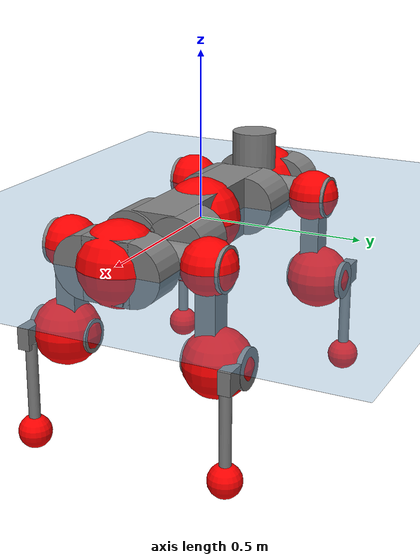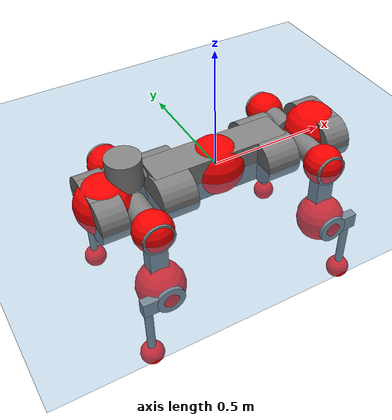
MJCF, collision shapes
<mujoco model="anymal_c">
  <compiler angle="radian" assetdir="assets" balanceinertia="true" inertiafromgeom="false"/>

  <option timestep="0.005" density="1.2" viscosity="2e-05"/>

  <size nkey="1"/>

  <visual>
    <quality shadowsize="8192"/>
    <map shadowclip="0.5"/>
  </visual>

  <default>
    <default class="/">
      <material specular="0" shininess="0.25"/>
      <geom contype="0" conaffinity="0" group="1" solref="-1000 -80"/>
      <site size="0.01 0.005 0.005" group="5"/>
      <general forcelimited="true" forcerange="-80 80" biastype="affine" gainprm="80" biasprm="0 -80 -2"/>
      <default class="anymal_c">
        <joint armature="0.01" damping="0.01" frictionloss="0.1"/>
        <default class="visual">
          <geom type="mesh" group="2"/>
          <default class="visual_zflip"/>
        </default>
        <default class="collision">
          <geom type="cylinder" group="3"/>
          <default class="foot">
            <geom size="0.03 0 0" type="sphere" condim="6" priority="1" friction="0.8 0.02 0.01" solimp="0.015 1 0.03"/>
          </default>
        </default>
      </default>
      <default class="reward_collision_sphere">
        <geom group="5" rgba="1 0 0 1"/>
      </default>
    </default>
  </default>

  <asset>
    <texture type="skybox" colorspace="auto" name="//unnamed_texture_0" builtin="gradient" rgb1="0.95 0.95 0.95" rgb2="0.95 0.95 0.95" width="100" height="600"/>
    <texture type="2d" colorspace="auto" name="texplane" builtin="checker" rgb1="0.345 0.575 0.748" rgb2="0.345 0.575 0.748" markrgb="1 1 1" width="512" height="512"/>
    <texture type="2d" colorspace="linear" name="base" file="base.png"/>
    <texture type="2d" colorspace="linear" name="top_shell" file="top_shell.png"/>
    <texture type="2d" colorspace="linear" name="bottom_shell" file="bottom_shell.png"/>
    <texture type="2d" colorspace="linear" name="remote" file="remote.png"/>
    <texture type="2d" colorspace="linear" name="hatch" file="hatch.png"/>
    <texture type="2d" colorspace="linear" name="handle" file="handle.png"/>
    <texture type="2d" colorspace="linear" name="face" file="face.png"/>
    <texture type="2d" colorspace="linear" name="battery" file="battery.png"/>
    <texture type="2d" colorspace="linear" name="lidar_cage" file="lidar_cage.png"/>
    <texture type="2d" colorspace="linear" name="depth_camera" file="depth_camera.png"/>
    <texture type="2d" colorspace="linear" name="wide_angle_camera" file="wide_angle_camera.png"/>
    <texture type="2d" colorspace="linear" name="lidar" file="lidar.png"/>
    <texture type="2d" colorspace="linear" name="drive" file="drive.png"/>
    <texture type="2d" colorspace="linear" name="hip_l" file="hip_l.png"/>
    <texture type="2d" colorspace="linear" name="shank_l" file="shank_l.png"/>
    <texture type="2d" colorspace="linear" name="foot" file="foot.png"/>
    <texture type="2d" colorspace="linear" name="thigh" file="thigh.png"/>
    <texture type="2d" colorspace="linear" name="shank_r" file="shank_r.png"/>
    <texture type="2d" colorspace="linear" name="hip_r" file="hip_r.png"/>
    <material name="MatPlane" class="/" texture="texplane" texuniform="true" texrepeat="2 2" specular="0.9" shininess="0.5"/>
    <material name="black_plastic" class="/" rgba="0.007 0.007 0.007 1"/>
    <material name="green" class="/" rgba="0.052 0.178 0.033 1"/>
    <material name="red" class="/" rgba="0.178 0.006 0.005 1"/>
    <material name="yellow" class="/" rgba="0.178 0.119 0.006 1"/>
    <material name="lwl" class="/" rgba="0.8 0.8 0.8 1"/>
    <material name="base" class="/" texture="base"/>
    <material name="top_shell" class="/" texture="top_shell"/>
    <material name="bottom_shell" class="/" texture="bottom_shell"/>
    <material name="hip_l" class="/" texture="hip_l"/>
    <material name="thigh" class="/" texture="thigh"/>
    <material name="shank_l" class="/" texture="shank_l"/>
    <material name="foot" class="/" texture="foot"/>
    <material name="hip_r" class="/" texture="hip_r"/>
    <material name="shank" class="/" texture="shank_r"/>
    <material name="hatch" class="/" texture="hatch"/>
    <material name="remote" class="/" texture="remote"/>
    <material name="handle" class="/" texture="handle"/>
    <material name="face" class="/" texture="face"/>
    <material name="depth_camera" class="/" texture="depth_camera"/>
    <material name="wide_angle_camera" class="/" texture="wide_angle_camera"/>
    <material name="battery" class="/" texture="battery"/>
    <material name="lidar_cage" class="/" texture="lidar_cage"/>
    <material name="lidar" class="/" texture="lidar"/>
    <material name="drive" class="/" texture="drive"/>
    <mesh name="base_0" class="/" file="base_0.obj"/>
    <mesh name="base_1" class="/" file="base_1.obj"/>
    <mesh name="base_2" class="/" file="base_2.obj"/>
    <mesh name="base_3" class="/" file="base_3.obj"/>
    <mesh name="base_4" class="/" file="base_4.obj"/>
    <mesh name="base_5" class="/" file="base_5.obj"/>
    <mesh name="top_shell" class="/" file="top_shell.obj"/>
    <mesh name="bottom_shell" class="/" file="bottom_shell.obj"/>
    <mesh name="remote" class="/" file="remote.obj"/>
    <mesh name="handle" class="/" file="handle.obj"/>
    <mesh name="face" class="/" file="face.obj"/>
    <mesh name="wide_angle_camera" class="/" file="wide_angle_camera.obj"/>
    <mesh name="depth_camera" class="/" file="depth_camera.obj"/>
    <mesh name="battery" class="/" file="battery.obj"/>
    <mesh name="lidar_cage" class="/" file="lidar_cage.obj"/>
    <mesh name="lidar" class="/" file="lidar.obj"/>
    <mesh name="drive" class="/" file="drive.obj"/>
    <mesh name="hip_l" class="/" file="hip_l.obj"/>
    <mesh name="thigh" class="/" file="thigh.obj"/>
    <mesh name="shank_l" class="/" file="shank_l.obj"/>
    <mesh name="foot" class="/" file="foot.obj"/>
    <mesh name="hip_r" class="/" file="hip_r.obj"/>
    <mesh name="hatch" class="/" file="hatch.obj"/>
    <mesh name="shank_r" class="/" file="shank_r.obj"/>
  </asset>

  <worldbody>
    <geom name="floor" class="/" size="100 100 0.125" type="plane" group="0" material="MatPlane"/>
    <light name="toplight_shadow" class="/" pos="0 0 5" dir="0.0990148 0.0990148 -0.990148" type="directional" ambient="0.04 0.04 0.04" diffuse="0.55 0.55 0.55" specular="0.12 0.12 0.12"/>
    <light name="toplight_fill" class="/" pos="0 0 5" dir="0.0990148 0.0990148 -0.990148" type="directional" castshadow="false" ambient="0.04 0.04 0.04" diffuse="0.3 0.3 0.3" specular="0.08 0.08 0.08"/>
    <body name="trunk" childclass="anymal_c" pos="-0.00258095 -0.00120185 0.000839475" quat="1 0.000606531 0.000194838 -0.000715918">
      <inertial pos="-0.000156184 -0.00020725 0.046524" quat="0.501749 0.502342 0.497308 0.498582" mass="18.9176" diaginertia="0.817888 0.666156 0.168151"/>
      <joint name="//unnamed_joint_0" type="free" armature="0" damping="0" frictionloss="0"/>
      <geom name="//unnamed_geom_1" class="visual" material="green" mesh="base_0"/>
      <geom name="//unnamed_geom_2" class="visual" material="yellow" mesh="base_1"/>
      <geom name="//unnamed_geom_3" class="visual" material="red" mesh="base_2"/>
      <geom name="//unnamed_geom_4" class="visual" material="black_plastic" mesh="base_3"/>
      <geom name="//unnamed_geom_5" class="visual" material="lwl" mesh="base_4"/>
      <geom name="//unnamed_geom_6" class="visual" material="base" mesh="base_5"/>
      <geom name="trunk_1" class="collision" size="0.290935 0.0702258 0.0902903" type="box"/>
      <geom name="trunk_2" class="collision" size="0.0902903 0.0727338" pos="0.228258 0.0709679 0" quat="0.707107 0 0.707107 0"/>
      <geom name="trunk_3" class="collision" size="0.0902903 0.0727338" pos="-0.228258 0.0709679 0" quat="0.707107 0 0.707107 0"/>
      <geom name="trunk_4" class="collision" size="0.0902903 0.0727338" pos="0.228258 -0.0709679 0" quat="0.707107 0 0.707107 0"/>
      <geom name="trunk_5" class="collision" size="0.0902903 0.0727338" pos="-0.228258 -0.0709679 0" quat="0.707107 0 0.707107 0"/>
      <geom name="//unnamed_geom_12" class="visual" material="top_shell" mesh="top_shell"/>
      <geom name="//unnamed_geom_13" class="visual" material="bottom_shell" mesh="bottom_shell"/>
      <geom name="//unnamed_geom_14" class="visual" material="remote" mesh="remote"/>
      <geom name="//unnamed_geom_15" class="visual" material="handle" mesh="handle"/>
      <geom name="//unnamed_geom_16" class="visual" pos="0.435001 0 0" quat="1 0 0 0" material="face" mesh="face"/>
      <geom name="trunk_6" class="collision" size="0.0551774 0.0702258 0.0902903" pos="0.492722 0 0" type="box"/>
      <geom name="//unnamed_geom_18" class="collision" size="0.0902903 0.0551774" pos="0.492722 0.0709679 0" quat="0.707107 0 0.707107 0"/>
      <geom name="//unnamed_geom_19" class="collision" size="0.0902903 0.0551774" pos="0.492722 -0.0709679 0" quat="0.707107 0 0.707107 0"/>
      <geom name="//unnamed_geom_20" class="visual" pos="0.484479 0 -0.0268511" quat="0.965926 0 0.258819 0" material="depth_camera" mesh="depth_camera"/>
      <geom name="//unnamed_geom_21" class="visual" pos="0.538373 0 0.0141674" material="wide_angle_camera" mesh="wide_angle_camera"/>
      <geom name="//unnamed_geom_22" class="visual_zflip" pos="-0.435001 0 0" quat="0 0 0 1" material="face" mesh="face"/>
      <geom name="trunk_7" class="collision" size="0.0551774 0.0702258 0.0902903" pos="-0.492722 0 0" quat="0 0 0 1" type="box"/>
      <geom name="//unnamed_geom_24" class="collision" size="0.0902903 0.0551774" pos="-0.492722 -0.0709679 0" quat="0 -0.707107 0 0.707107"/>
      <geom name="//unnamed_geom_25" class="collision" size="0.0902903 0.0551774" pos="-0.492722 0.0709679 0" quat="0 -0.707107 0 0.707107"/>
      <geom name="//unnamed_geom_26" class="visual" pos="-0.484479 0 -0.0268511" quat="0 -0.258819 0 0.965926" material="depth_camera" mesh="depth_camera"/>
      <geom name="//unnamed_geom_27" class="visual_zflip" pos="-0.538373 0 0.0141674" quat="0 0 0 1" material="wide_angle_camera" mesh="wide_angle_camera"/>
      <geom name="//unnamed_geom_28" class="visual" material="battery" mesh="battery"/>
      <geom name="//unnamed_geom_29" class="visual" pos="0 0.0770454 0.0282759" quat="0.683013 -0.183013 0.183013 0.683013" material="depth_camera" mesh="depth_camera"/>
      <geom name="//unnamed_geom_30" class="visual" pos="0 -0.0770454 0.0282759" quat="0.683013 0.183013 0.183013 -0.683013" material="depth_camera" mesh="depth_camera"/>
      <geom name="//unnamed_geom_31" class="visual" pos="-0.382004 0 0.0695594" quat="1 0 0 0" material="lidar_cage" mesh="lidar_cage"/>
      <geom name="trunk_8" class="collision" size="0.0702258 0.0601935" pos="-0.382004 0 0.126343"/>
      <geom name="//unnamed_geom_33" class="visual" pos="-0.382004 -1.39992e-05 0.134576" quat="0.707107 0 0 -0.707107" material="lidar" mesh="lidar"/>
      <geom name="//unnamed_geom_34" class="visual" pos="0.314733 0.105414 1.16336e-09" quat="0.258819 0.965926 0 0" material="drive" mesh="drive"/>
      <geom name="//unnamed_geom_35" class="visual" pos="0.314733 -0.105414 -1.16336e-09" quat="0.258819 -0.965926 0 0" material="drive" mesh="drive"/>
      <geom name="//unnamed_geom_36" class="visual" pos="-0.314733 0.105414 -1.16336e-09" quat="0 0 0.965926 -0.258819" material="drive" mesh="drive"/>
      <geom name="//unnamed_geom_37" class="visual" pos="-0.314733 -0.105414 1.16336e-09" quat="0 0 -0.965926 -0.258819" material="drive" mesh="drive"/>
      <geom name="//unnamed_geom_38" class="visual" pos="0.121737 0 0.0690862" quat="1 0 0 0" material="hatch" mesh="hatch"/>
      <geom name="//unnamed_geom_39" class="reward_collision_sphere" size="0.120387"/>
      <geom name="//unnamed_geom_40" class="reward_collision_sphere" size="0.120387" pos="0.472257 0 0"/>
      <geom name="//unnamed_geom_41" class="reward_collision_sphere" size="0.120387" pos="-0.472257 0 0"/>
      <site name="imu" pos="0.262093 0.00372426 0.0489748" size="0.0100323"/>
      <camera name="track" pos="0 -2.02766 0" quat="0.707107 0.707107 0 0" mode="trackcom"/>
      <camera name="ego_camera" pos="0.472257 0 -0.0378555" quat="-0.5 -0.5 0.5 0.5"/>
      <body name="LF_HIP" pos="0.315422 0.105482 -0.000414406" quat="0.259487 0.965746 0.000846251 -0.000538229">
        <inertial pos="0.0568825 -0.0150839 -0.00773213" quat="-0.128412 0.710923 -0.133057 0.678524" mass="2.88598" diaginertia="0.00769394 0.00524749 0.00257164"/>
        <joint name="LF_HAA" pos="0 0 0" axis="0.999997 0.00221762 -0.000671573" range="-0.729964 0.44498" armature="0.0108683" damping="0.00490422" frictionloss="0.0968158"/>
        <geom name="//unnamed_geom_42" class="visual" pos="0 6.84355e-05 -1.12405e-05" quat="0.258819 -0.965926 0 0" material="hip_l" mesh="hip_l"/>
        <geom name="//unnamed_geom_43" class="visual" pos="0.0628627 -0.0756784 -0.0431941" quat="0.183013 -0.683013 0.683013 0.183013" material="drive" mesh="drive"/>
        <geom name="//unnamed_geom_44" class="collision" size="0.0501613 0.0702258" pos="0.0628627 -0.0121252 -0.0065348" quat="-0.353553 -0.612372 0.612372 -0.353553"/>
        <body name="LF_THIGH" pos="0.0636227 -0.0750091 -0.040161" quat="0.183186 -0.683171 0.682798 0.18305">
          <inertial pos="0.0351141 0.000480987 -0.230079" quat="0.993428 -0.0058701 -0.0800285 0.0816203" mass="3.1267" diaginertia="0.0381526 0.0314909 0.00319937"/>
          <joint name="LF_HFE" pos="0 0 0" axis="1 -3.38736e-05 -0.000324001" stiffness="0.0142171" range="-3.18403 3.16977" armature="0.0108269" damping="0" frictionloss="0.0992047"/>
          <geom name="//unnamed_geom_45" class="visual" pos="0.000708953 1.11714e-06 0" quat="0.707107 0 0 -0.707107" material="thigh" mesh="thigh"/>
          <geom name="//unnamed_geom_46" class="collision" size="0.0652096 0.040129" pos="0.0419784 0 0" quat="0.5 0.5 -0.5 -0.5"/>
          <geom name="//unnamed_geom_47" class="collision" size="0.0376209 0.0300968 0.14177" pos="0.0314838 0 -0.133738" quat="0.707107 0 0 -0.707107" type="box"/>
          <geom name="//unnamed_geom_48" class="visual" pos="0.105261 0 -0.26972" quat="1 0 0 0" material="drive" mesh="drive"/>
          <geom name="//unnamed_geom_49" class="collision" size="0.0501613 0.0702258" pos="0.0317987 0 -0.26972" quat="0.707107 0 0.707107 0"/>
          <geom name="//unnamed_geom_50" class="reward_collision_sphere" size="0.080258" pos="0.0262365 0 0"/>
          <body name="LF_SHANK" pos="0.104872 -0.000514872 -0.270377" quat="1 6.07158e-05 0.000315301 0.000155789">
            <inertial pos="0.00616704 -0.0620652 -0.0779087" quat="0.992758 -0.117837 0.0094625 -0.0213495" mass="0.586865" diaginertia="0.013119 0.00988496 0.000840509"/>
            <joint name="LF_KFE" pos="0 0 0" axis="0.999976 0.000249675 -0.00685871" stiffness="0.000285931" range="-3.15001 3.09748" armature="0.00998881" damping="0.00963941" frictionloss="0.100548"/>
            <geom name="//unnamed_geom_51" class="visual" pos="0.000231174 0.00123263 0" quat="0.707107 0 0 -0.707107" material="shank_l" mesh="shank_l"/>
            <geom name="LF_kfe_act" class="collision" size="0.0601935 0.0200645" pos="0.0209892 0 0" quat="0.5 0.5 -0.5 -0.5"/>
            <geom name="//unnamed_geom_53" class="collision" size="0.0576844 0.0338588 0.0190613" pos="0.0209892 -0.0582941 0" quat="0.5 0.5 -0.5 -0.5" type="box"/>
            <geom name="//unnamed_geom_54" class="visual" pos="0.0136954 -0.0887689 -0.31985" quat="0.382683 0 0 -0.92388" material="foot" mesh="foot"/>
            <geom name="LF_calf" class="collision" size="0.0175564 0.141708" pos="0.0136955 -0.0891662 -0.159925" quat="0.707107 0 0 -0.707107"/>
            <geom name="LF_foot" class="foot" size="0.0307295" pos="0.0136955 -0.0891662 -0.298557" quat="0.707107 0 0 -0.707107"/>
            <geom name="//unnamed_geom_57" class="reward_collision_sphere" size="0.100323" pos="-0.052473 0 0"/>
            <geom name="//unnamed_geom_58" class="reward_collision_sphere" size="0.0501613" pos="0.0136955 -0.0891662 -0.298557"/>
            <site name="LF_foot" class="foot" pos="0.0136955 -0.0891662 -0.298557" quat="0.707107 0 0 -0.707107" size="0.0100323"/>
          </body>
        </body>
      </body>
      <body name="RF_HIP" pos="0.315212 -0.103789 0.0017555" quat="0.258678 -0.965963 0.000281096 -0.000214448">
        <inertial pos="0.0614451 0.0147866 -0.00775362" quat="0.134209 0.677589 0.12847 0.711588" mass="2.94078" diaginertia="0.00758722 0.0053992 0.00251124"/>
        <joint name="RF_HAA" pos="0 0 0" axis="0.999998 0.000512415 -0.00181497" range="-0.488405 0.721169" armature="0.00871026" damping="0.00884072" frictionloss="0.113372"/>
        <geom name="//unnamed_geom_59" class="visual" pos="0 -6.84349e-05 -1.12404e-05" quat="0.258819 0.965926 0 0" material="hip_r" mesh="hip_r"/>
        <geom name="//unnamed_geom_60" class="visual" pos="0.0628627 0.0756784 -0.0431941" quat="0.183013 0.683013 0.683013 -0.183013" material="drive" mesh="drive"/>
        <geom name="//unnamed_geom_61" class="collision" size="0.0501613 0.0702258" pos="0.0628627 0.0121252 -0.0065348" quat="-0.353553 0.612372 0.612372 0.353553"/>
        <body name="RF_THIGH" pos="0.0629129 0.0737278 -0.0380259" quat="0.182343 0.683103 0.682845 -0.18397">
          <inertial pos="0.0311129 -0.00275557 -0.231068" quat="0.992751 -0.0050318 -0.0807409 0.0888878" mass="3.03356" diaginertia="0.0388006 0.0326419 0.00313902"/>
          <joint name="RF_HFE" pos="0 0 0" axis="0.999986 0.0048213 -0.00228482" stiffness="0.00536436" range="-3.1203 3.15737" armature="0.0100476" damping="0.0102407" frictionloss="0.0969995"/>
          <geom name="//unnamed_geom_62" class="visual" pos="0.000708953 1.11714e-06 0" quat="0.707107 0 0 -0.707107" material="thigh" mesh="thigh"/>
          <geom name="//unnamed_geom_63" class="collision" size="0.0652096 0.040129" pos="0.0419784 0 0" quat="0.5 0.5 0.5 0.5"/>
          <geom name="//unnamed_geom_64" class="collision" size="0.0376209 0.0300968 0.14177" pos="0.0314838 0 -0.133738" quat="0.707107 0 0 0.707107" type="box"/>
          <geom name="//unnamed_geom_65" class="visual" pos="0.105261 0 -0.26972" quat="1 0 0 0" material="drive" mesh="drive"/>
          <geom name="//unnamed_geom_66" class="collision" size="0.0501613 0.0702258" pos="0.0317987 0 -0.26972" quat="0.707107 0 0.707107 0"/>
          <geom name="//unnamed_geom_67" class="reward_collision_sphere" size="0.080258" pos="0.0262365 0 0"/>
          <body name="RF_SHANK" pos="0.105646 5.27255e-05 -0.268355" quat="1 -4.21678e-06 3.05556e-05 -1.23565e-05">
            <inertial pos="0.00599471 0.0619258 -0.0751401" quat="0.992973 0.115564 -0.00113894 0.0254516" mass="0.601161" diaginertia="0.0136174 0.00996954 0.000876005"/>
            <joint name="RF_KFE" pos="0 0 0" axis="0.999924 -0.0109814 0.00561762" range="-3.13598 3.13232" armature="0.0103145" damping="0.0087549" frictionloss="0.0954031"/>
            <geom name="//unnamed_geom_68" class="visual" pos="0.000231173 -0.00123263 0" quat="0.707107 0 0 0.707107" material="shank" mesh="shank_r"/>
            <geom name="RF_kfe_act" class="collision" size="0.0601935 0.0200645" pos="0.0209892 0 0" quat="0.5 0.5 0.5 0.5"/>
            <geom name="//unnamed_geom_70" class="collision" size="0.0576844 0.0338588 0.0190613" pos="0.0209892 0.0582941 0" quat="0.5 0.5 0.5 0.5" type="box"/>
            <geom name="//unnamed_geom_71" class="visual" pos="0.0136955 0.0887689 -0.31985" quat="0.382683 0 0 0.92388" material="foot" mesh="foot"/>
            <geom name="RF_calf" class="collision" size="0.0175564 0.141708" pos="0.0136955 0.0891662 -0.159925" quat="0.707107 0 0 0.707107"/>
            <geom name="RF_foot" class="foot" size="0.0298804" pos="0.0136955 0.0891662 -0.298557" quat="0.707107 0 0 0.707107"/>
            <geom name="//unnamed_geom_74" class="reward_collision_sphere" size="0.100323" pos="-0.052473 0 0"/>
            <geom name="//unnamed_geom_75" class="reward_collision_sphere" size="0.0501613" pos="0.0136955 0.0891662 -0.298557"/>
            <site name="RF_foot" class="foot" pos="0.0136955 0.0891662 -0.298557" quat="0.707107 0 0 0.707107" size="0.0100323"/>
          </body>
        </body>
      </body>
      <body name="LH_HIP" pos="-0.314129 0.10429 0.00115472" quat="-0.000672218 0.000858458 0.96612 -0.258093">
        <inertial pos="0.0622002 0.0161769 -0.00751524" quat="0.135286 0.679076 0.127962 0.710055" mass="2.79519" diaginertia="0.00750972 0.00539791 0.00254498"/>
        <joint name="LH_HAA" pos="0 0 0" axis="0.999994 0.00136033 0.00322329" range="-0.480997 0.720114" armature="0.00996733" damping="0.00838956" frictionloss="0.0960093"/>
        <geom name="//unnamed_geom_76" class="visual" pos="0 -6.84349e-05 -1.12404e-05" quat="-0.258819 -0.965926 0 0" material="hip_r" mesh="hip_r"/>
        <geom name="//unnamed_geom_77" class="visual" pos="0.0628627 0.0756784 -0.0431941" quat="0.183013 0.683013 0.683013 -0.183013" material="drive" mesh="drive"/>
        <geom name="//unnamed_geom_78" class="collision" size="0.0501613 0.0702258" pos="0.0628627 0.0121252 -0.0065348" quat="-0.353553 0.612372 0.612372 0.353553"/>
        <body name="LH_THIGH" pos="0.0596179 0.0731193 -0.0386584" quat="0.182516 0.682694 0.683633 -0.182381">
          <inertial pos="0.0325204 0.000384387 -0.231946" quat="0.993793 -0.0110158 -0.0764463 0.0800626" mass="3.02286" diaginertia="0.0380403 0.0313478 0.00313903"/>
          <joint name="LH_HFE" pos="0 0 0" axis="0.999984 -0.00314384 -0.00464808" range="-3.13707 3.14456" armature="0.00958442" damping="0" frictionloss="0.105303"/>
          <geom name="//unnamed_geom_79" class="visual" pos="0.000708953 1.11714e-06 0" quat="0.707107 0 0 -0.707107" material="thigh" mesh="thigh"/>
          <geom name="//unnamed_geom_80" class="collision" size="0.0652096 0.040129" pos="0.0419784 0 0" quat="0.5 0.5 -0.5 -0.5"/>
          <geom name="//unnamed_geom_81" class="collision" size="0.0376209 0.0300968 0.14177" pos="0.0314838 0 -0.133738" quat="0.707107 0 0 -0.707107" type="box"/>
          <geom name="//unnamed_geom_82" class="visual" pos="0.105261 0 -0.26972" quat="1 0 0 0" material="drive" mesh="drive"/>
          <geom name="//unnamed_geom_83" class="collision" size="0.0501613 0.0702258" pos="0.0317987 0 -0.26972" quat="0.707107 0 0.707107 0"/>
          <geom name="//unnamed_geom_84" class="reward_collision_sphere" size="0.080258" pos="0.0262365 0 0"/>
          <body name="LH_SHANK" pos="0.104041 -0.000869461 -0.270095" quat="1 -9.24538e-05 0.000203492 6.56191e-05">
            <inertial pos="0.00577367 0.0618962 -0.0760346" quat="0.992925 0.115818 -0.00195268 0.0261243" mass="0.592345" diaginertia="0.0129126 0.00989709 0.000840426"/>
            <joint name="LH_KFE" pos="0 0 0" axis="0.999984 0.00509545 -0.00264014" range="-3.12203 3.14242" armature="0.0103108" damping="0" frictionloss="0.0996243"/>
            <geom name="//unnamed_geom_85" class="visual" pos="0.000231173 -0.00123263 0" quat="-0.707107 0 0 -0.707107" material="shank" mesh="shank_r"/>
            <geom name="LH_kfe_act" class="collision" size="0.0601935 0.0200645" pos="0.0209892 0 0" quat="0.5 0.5 -0.5 -0.5"/>
            <geom name="//unnamed_geom_87" class="collision" size="0.0576844 0.0338588 0.0190613" pos="0.0209892 0.0582941 0" quat="0.5 0.5 -0.5 -0.5" type="box"/>
            <geom name="//unnamed_geom_88" class="visual" pos="0.0136955 0.0887689 -0.31985" quat="-0.382683 0 0 -0.92388" material="foot" mesh="foot"/>
            <geom name="LH_calf" class="collision" size="0.0175564 0.141708" pos="0.0136955 0.0891662 -0.159925" quat="0.707107 0 0 -0.707107"/>
            <geom name="LH_foot" class="foot" size="0.0323687" pos="0.0136955 0.0891662 -0.298557" quat="0.707107 0 0 -0.707107"/>
            <geom name="//unnamed_geom_91" class="reward_collision_sphere" size="0.100323" pos="-0.052473 0 0"/>
            <geom name="//unnamed_geom_92" class="reward_collision_sphere" size="0.0501613" pos="0.0136955 0.0891662 -0.298557"/>
            <site name="LH_foot" class="foot" pos="0.0136955 0.0891662 -0.298557" quat="0.707107 0 0 -0.707107" size="0.0100323"/>
          </body>
        </body>
      </body>
      <body name="RH_HIP" pos="-0.315604 -0.107911 0.00206992" quat="-0.000495938 -6.8064e-05 -0.966039 -0.258394">
        <inertial pos="0.0594064 -0.0138281 -0.00795871" quat="-0.122115 0.717584 -0.134669 0.672328" mass="2.80655" diaginertia="0.00749171 0.00531784 0.00252444"/>
        <joint name="RH_HAA" pos="0 0 0" axis="0.999998 -0.00159195 0.00108776" stiffness="0.00611173" range="-0.728722 0.485712" armature="0.0114175" damping="0.0230362" frictionloss="0.0891793"/>
        <geom name="//unnamed_geom_93" class="visual" pos="0 6.84355e-05 -1.12405e-05" quat="-0.258819 0.965926 0 0" material="hip_l" mesh="hip_l"/>
        <geom name="//unnamed_geom_94" class="visual" pos="0.0628627 -0.0756784 -0.0431941" quat="-0.183013 0.683013 -0.683013 -0.183013" material="drive" mesh="drive"/>
        <geom name="//unnamed_geom_95" class="collision" size="0.0501613 0.0702258" pos="0.0628627 -0.0121252 -0.0065348" quat="0.353553 0.612372 -0.612372 0.353553"/>
        <body name="RH_THIGH" pos="0.0633357 -0.0733287 -0.0417568" quat="-0.182835 0.683138 -0.683011 -0.182729">
          <inertial pos="0.0325366 4.21522e-05 -0.231749" quat="0.993166 -0.00409167 -0.0807923 0.0841213" mass="3.14818" diaginertia="0.0392959 0.0325048 0.00311637"/>
          <joint name="RH_HFE" pos="0 0 0" axis="0.999984 0.00523062 0.00215576" range="-3.18874 3.15835" armature="0.01007" damping="0.0119392" frictionloss="0.10545"/>
          <geom name="//unnamed_geom_96" class="visual" pos="0.000708953 1.11714e-06 0" quat="0.707107 0 0 -0.707107" material="thigh" mesh="thigh"/>
          <geom name="//unnamed_geom_97" class="collision" size="0.0652096 0.040129" pos="0.0419784 0 0" quat="0.5 0.5 0.5 0.5"/>
          <geom name="//unnamed_geom_98" class="collision" size="0.0376209 0.0300968 0.14177" pos="0.0314838 0 -0.133738" quat="0.707107 0 0 0.707107" type="box"/>
          <geom name="//unnamed_geom_99" class="visual" pos="0.105261 0 -0.26972" quat="1 0 0 0" material="drive" mesh="drive"/>
          <geom name="//unnamed_geom_100" class="collision" size="0.0501613 0.0702258" pos="0.0317987 0 -0.26972" quat="0.707107 0 0.707107 0"/>
          <geom name="//unnamed_geom_101" class="reward_collision_sphere" size="0.080258" pos="0.0262365 0 0"/>
          <body name="RH_SHANK" pos="0.102209 0.00180018 -0.270135" quat="1 0.000103031 -0.000294621 -0.000178936">
            <inertial pos="0.00845668 -0.0618691 -0.076226" quat="0.993128 -0.114441 0.00272976 -0.0243611" mass="0.593655" diaginertia="0.0125361 0.00940618 0.000831843"/>
            <joint name="RH_KFE" pos="0 0 0" axis="0.999992 -0.00393359 0.000555701" range="-3.09247 3.18864" armature="0.00908122" damping="0.00595559" frictionloss="0.0950989"/>
            <geom name="//unnamed_geom_102" class="visual" pos="0.000231174 0.00123263 0" quat="0.707107 0 0 -0.707107" material="shank_l" mesh="shank_l"/>
            <geom name="RH_kfe_act" class="collision" size="0.0601935 0.0200645" pos="0.0209892 0 0" quat="0.5 0.5 0.5 0.5"/>
            <geom name="//unnamed_geom_104" class="collision" size="0.0576844 0.0338588 0.0190613" pos="0.0209892 -0.0582941 0" quat="0.5 0.5 0.5 0.5" type="box"/>
            <geom name="//unnamed_geom_105" class="visual" pos="0.0136954 -0.0887689 -0.31985" quat="0.382683 0 0 -0.92388" material="foot" mesh="foot"/>
            <geom name="RH_calf" class="collision" size="0.0175564 0.141708" pos="0.0136955 -0.0891662 -0.159925" quat="0.707107 0 0 0.707107"/>
            <geom name="RH_foot" class="foot" size="0.0305278" pos="0.0136955 -0.0891662 -0.298557" quat="0.707107 0 0 0.707107"/>
            <geom name="//unnamed_geom_108" class="reward_collision_sphere" size="0.100323" pos="-0.052473 0 0"/>
            <geom name="//unnamed_geom_109" class="reward_collision_sphere" size="0.0501613" pos="0.0136955 -0.0891662 -0.298557"/>
            <site name="RH_foot" class="foot" pos="0.0136955 -0.0891662 -0.298557" quat="0.707107 0 0 0.707107" size="0.0100323"/>
          </body>
        </body>
      </body>
    </body>
  </worldbody>

  <contact>
    <pair class="/" geom1="floor" geom2="LF_foot" name="//unnamed_contact_0"/>
    <pair class="/" geom1="floor" geom2="RF_foot" name="//unnamed_contact_1"/>
    <pair class="/" geom1="floor" geom2="LH_foot" name="//unnamed_contact_2"/>
    <pair class="/" geom1="floor" geom2="RH_foot" name="//unnamed_contact_3"/>
  </contact>

  <actuator>
    <general name="LF_HAA" class="/" joint="LF_HAA" forcerange="-80.9434 80.9434" gainprm="81.7568" biasprm="0 -81.7568 -1.88425"/>
    <general name="LF_HFE" class="/" joint="LF_HFE" forcerange="-81.0009 81.0009" gainprm="81.7568" biasprm="0 -81.7568 -1.88425"/>
    <general name="LF_KFE" class="/" joint="LF_KFE" forcerange="-81.2308 81.2308" gainprm="81.7568" biasprm="0 -81.7568 -1.88425"/>
    <general name="RF_HAA" class="/" joint="RF_HAA" forcerange="-88.8498 88.8498" gainprm="81.7568" biasprm="0 -81.7568 -1.88425"/>
    <general name="RF_HFE" class="/" joint="RF_HFE" forcerange="-81.0574 81.0574" gainprm="81.7568" biasprm="0 -81.7568 -1.88425"/>
    <general name="RF_KFE" class="/" joint="RF_KFE" forcerange="-76.0433 76.0433" gainprm="81.7568" biasprm="0 -81.7568 -1.88425"/>
    <general name="LH_HAA" class="/" joint="LH_HAA" forcerange="-79.3929 79.3929" gainprm="81.7568" biasprm="0 -81.7568 -1.88425"/>
    <general name="LH_HFE" class="/" joint="LH_HFE" forcerange="-79.3828 79.3828" gainprm="81.7568" biasprm="0 -81.7568 -1.88425"/>
    <general name="LH_KFE" class="/" joint="LH_KFE" forcerange="-82.6922 82.6922" gainprm="81.7568" biasprm="0 -81.7568 -1.88425"/>
    <general name="RH_HAA" class="/" joint="RH_HAA" forcerange="-79.9844 79.9844" gainprm="81.7568" biasprm="0 -81.7568 -1.88425"/>
    <general name="RH_HFE" class="/" joint="RH_HFE" forcerange="-83.6011 83.6011" gainprm="81.7568" biasprm="0 -81.7568 -1.88425"/>
    <general name="RH_KFE" class="/" joint="RH_KFE" forcerange="-87.7708 87.7708" gainprm="81.7568" biasprm="0 -81.7568 -1.88425"/>
  </actuator>

  <sensor>
    <gyro site="imu" name="imu_angular_velocity"/>
    <velocimeter site="imu" name="imu_linear_velocity"/>
    <framelinvel objtype="site" objname="LF_foot" name="LF_foot_global_linear_velocity"/>
    <framelinvel objtype="site" objname="RF_foot" name="RF_foot_global_linear_velocity"/>
    <framelinvel objtype="site" objname="LH_foot" name="LH_foot_global_linear_velocity"/>
    <framelinvel objtype="site" objname="RH_foot" name="RH_foot_global_linear_velocity"/>
  </sensor>

  <keyframe>
    <key name="home" qpos="0 0 0.55 1 0 0 0 0 0.4 -0.8 0 -0.4 0.8 0 -0.4 0.8 0 0.4 -0.8"/>
  </keyframe>
</mujoco>
